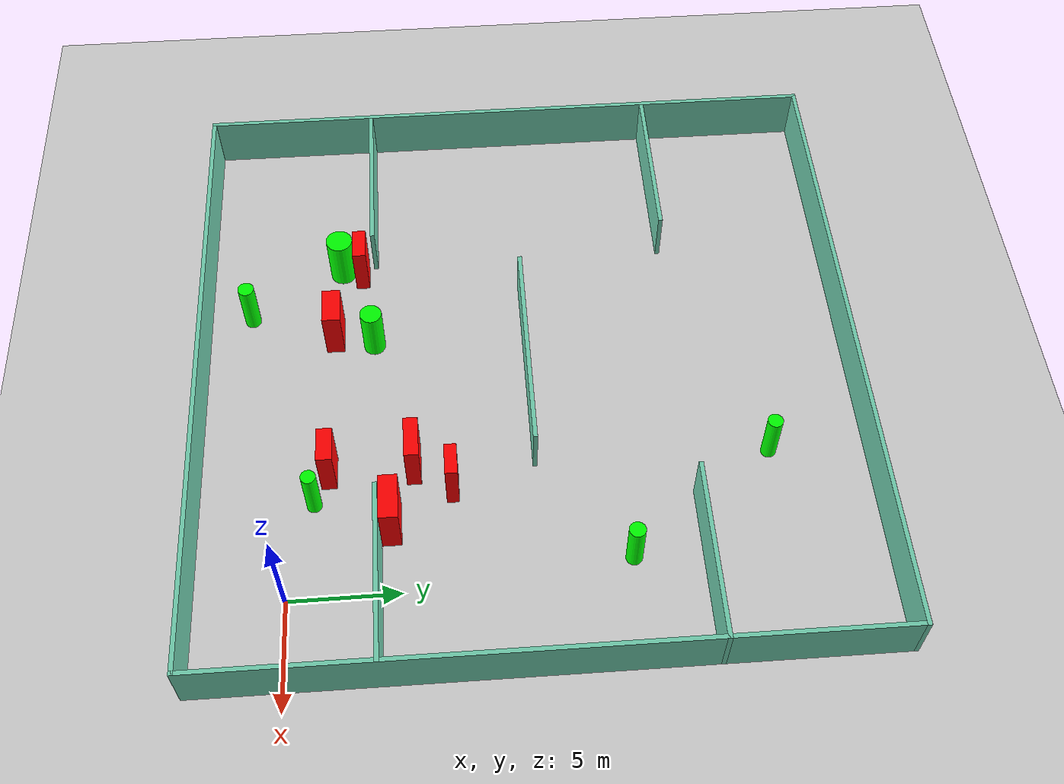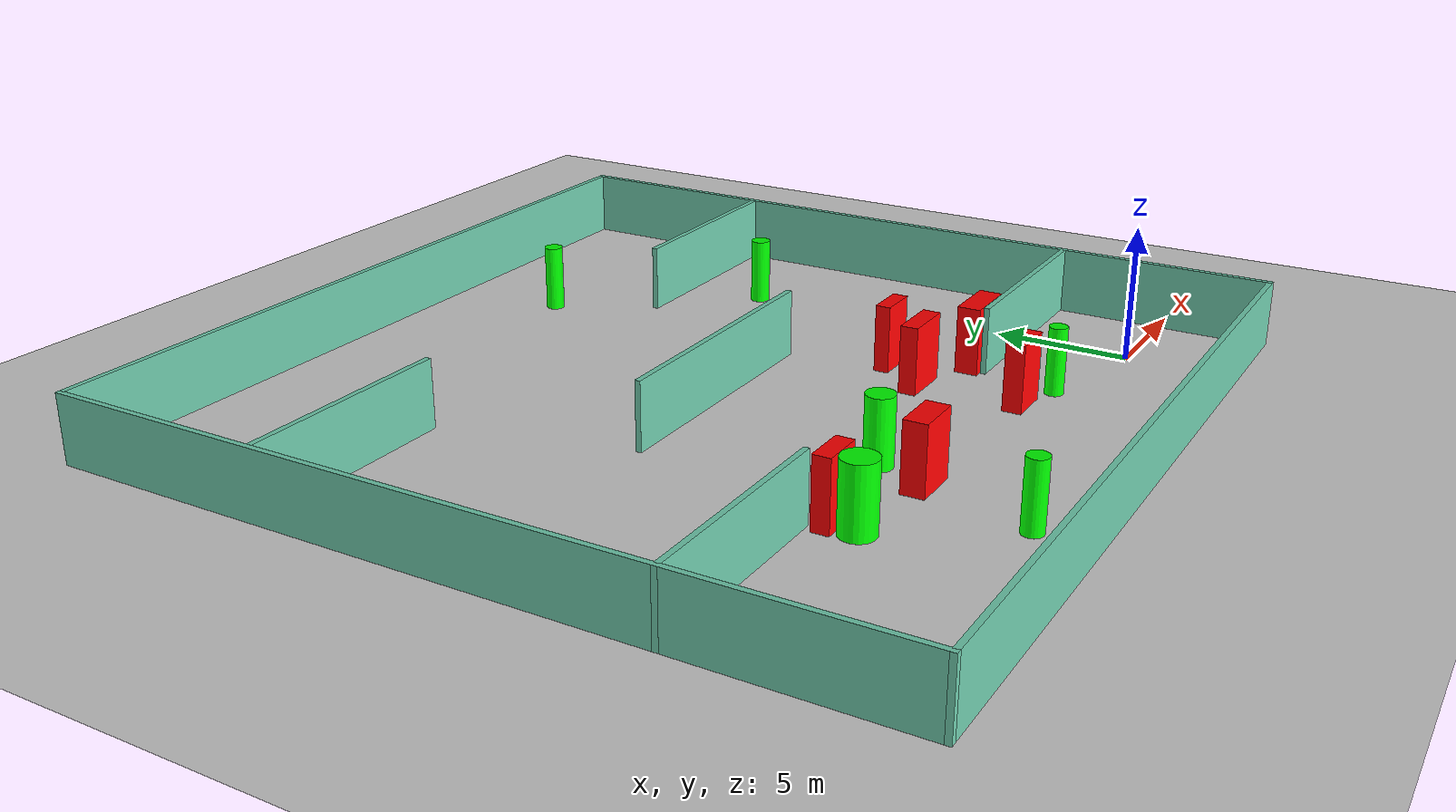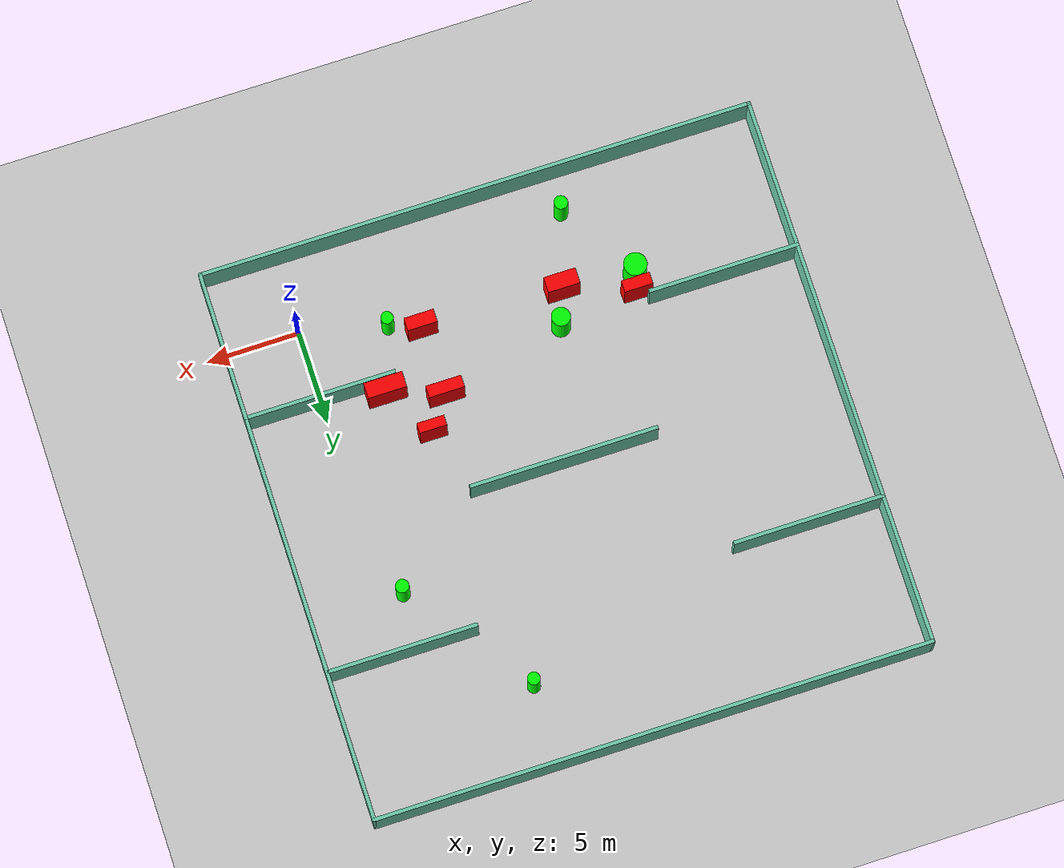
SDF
<sdf version="1.7">
 <world name="default">
  <light name="sun" type="directional">
   <pose>0 0 10 0 -0 0</pose>
   <diffuse>0.8 0.8 0.8 1</diffuse>
   <specular>0.2 0.2 0.2 1</specular>
   <attenuation>
    <range>1000</range>
    <constant>0.9</constant>
    <linear>0.01</linear>
    <quadratic>0.001</quadratic>
   </attenuation>
   <direction>-0.5 0.1 -0.9</direction>
   <spot><inner_angle>0</inner_angle><outer_angle>0</outer_angle><falloff>0</falloff></spot>
  </light>
  <model name="ground_plane">
   <static>1</static>
   <link name="link">
    <collision name="collision">
     <geometry><plane><normal>0 0 1</normal><size>100 100</size></plane></geometry>
     <surface>
      <contact><collide_bitmask>65535</collide_bitmask></contact>
      <friction><ode><mu>100</mu><mu2>50</mu2></ode></friction>
     </surface>
    </collision>
    <visual name="visual">
     <cast_shadows>0</cast_shadows>
     <geometry><plane><normal>0 0 1</normal><size>100 100</size></plane></geometry>
     <material>
      <script><uri>file://media/materials/scripts/gazebo.material</uri><name>Gazebo/Grey</name></script>
     </material>
    </visual>
   </link>
  </model>
  <gravity>0 0 -9.8</gravity>
  <magnetic_field>6e-06 2.3e-05 -4.2e-05</magnetic_field>
  <atmosphere type="adiabatic"/>
  <physics type="ode">
   <max_step_size>0.001</max_step_size>
   <real_time_factor>1</real_time_factor>
   <real_time_update_rate>1000</real_time_update_rate>
  </physics>
  <scene><ambient>0.4 0.4 0.4 1</ambient><background>0.7 0.7 0.7 1</background><shadows>1</shadows></scene>
  <spherical_coordinates>
   <surface_model>EARTH_WGS84</surface_model>
   <latitude_deg>0</latitude_deg>
   <longitude_deg>0</longitude_deg>
   <elevation>0</elevation>
   <heading_deg>0</heading_deg>
  </spherical_coordinates>
  <model name="my_base_walls">
   <link name="Wall_10">
    <collision name="Wall_10_Collision">
     <geometry><box><size>8.2 0.2 2.5</size></box></geometry>
     <pose>0 0 1.25 0 -0 0</pose>
    </collision>
    <visual name="Wall_10_Visual">
     <pose>0 0 1.25 0 -0 0</pose>
     <geometry><box><size>8.2 0.2 2.5</size></box></geometry>
     <material>
      <script><uri>file://media/materials/scripts/gazebo.material</uri><name>Gazebo/Grey</name></script>
      <ambient>0.435294 0.796078 0.67451 1</ambient>
     </material>
     <meta><layer>0</layer></meta>
    </visual>
    <pose>-11 -7 0 0 -0 0</pose>
   </link>
   <link name="Wall_12">
    <collision name="Wall_12_Collision">
     <geometry><box><size>8.2 0.2 2.5</size></box></geometry>
     <pose>0 0 1.25 0 -0 0</pose>
    </collision>
    <visual name="Wall_12_Visual">
     <pose>0 0 1.25 0 -0 0</pose>
     <geometry><box><size>8.2 0.2 2.5</size></box></geometry>
     <material>
      <script><uri>file://media/materials/scripts/gazebo.material</uri><name>Gazebo/Grey</name></script>
      <ambient>0.435294 0.796078 0.67451 1</ambient>
     </material>
     <meta><layer>0</layer></meta>
    </visual>
    <pose>-11 7 0 0 -0 0</pose>
   </link>
   <link name="Wall_14">
    <collision name="Wall_14_Collision">
     <geometry><box><size>8.2 0.2 2.5</size></box></geometry>
     <pose>0 0 1.25 0 -0 0</pose>
    </collision>
    <visual name="Wall_14_Visual">
     <pose>0 0 1.25 0 -0 0</pose>
     <geometry><box><size>8.2 0.2 2.5</size></box></geometry>
     <material>
      <script><uri>file://media/materials/scripts/gazebo.material</uri><name>Gazebo/Grey</name></script>
      <ambient>0.435294 0.796078 0.67451 1</ambient>
     </material>
     <meta><layer>0</layer></meta>
    </visual>
    <pose>11 7 0 0 -0 3.14159</pose>
   </link>
   <link name="Wall_16">
    <collision name="Wall_16_Collision">
     <geometry><box><size>10.2 0.2 2.5</size></box></geometry>
     <pose>0 0 1.25 0 -0 0</pose>
    </collision>
    <visual name="Wall_16_Visual">
     <pose>0 0 1.25 0 -0 0</pose>
     <geometry><box><size>10.2 0.2 2.5</size></box></geometry>
     <material>
      <script><uri>file://media/materials/scripts/gazebo.material</uri><name>Gazebo/Grey</name></script>
      <ambient>0.435294 0.796078 0.67451 1</ambient>
     </material>
     <meta><layer>0</layer></meta>
    </visual>
    <pose>0 0 0 0 -0 3.14159</pose>
   </link>
   <link name="Wall_2">
    <collision name="Wall_2_Collision">
     <geometry><box><size>30.2 0.2 2.5</size></box></geometry>
     <pose>0 0 1.25 0 -0 0</pose>
    </collision>
    <visual name="Wall_2_Visual">
     <pose>0 0 1.25 0 -0 0</pose>
     <geometry><box><size>30.2 0.2 2.5</size></box></geometry>
     <material>
      <script><uri>file://media/materials/scripts/gazebo.material</uri><name>Gazebo/Grey</name></script>
      <ambient>0.435294 0.796078 0.67451 1</ambient>
     </material>
     <meta><layer>0</layer></meta>
    </visual>
    <pose>0 -15 0 0 -0 3.14159</pose>
   </link>
   <link name="Wall_3">
    <collision name="Wall_3_Collision">
     <geometry><box><size>30.2 0.2 2.5</size></box></geometry>
     <pose>0 0 1.25 0 -0 0</pose>
    </collision>
    <visual name="Wall_3_Visual">
     <pose>0 0 1.25 0 -0 0</pose>
     <geometry><box><size>30.2 0.2 2.5</size></box></geometry>
     <material>
      <script><uri>file://media/materials/scripts/gazebo.material</uri><name>Gazebo/Grey</name></script>
      <ambient>0.435294 0.796078 0.67451 1</ambient>
     </material>
     <meta><layer>0</layer></meta>
    </visual>
    <pose>-15 0 0 0 -0 1.5708</pose>
   </link>
   <link name="Wall_4">
    <collision name="Wall_4_Collision">
     <geometry><box><size>30.2 0.2 2.5</size></box></geometry>
     <pose>0 0 1.25 0 -0 0</pose>
    </collision>
    <visual name="Wall_4_Visual">
     <pose>0 0 1.25 0 -0 0</pose>
     <geometry><box><size>30.2 0.2 2.5</size></box></geometry>
     <material>
      <script><uri>file://media/materials/scripts/gazebo.material</uri><name>Gazebo/Grey</name></script>
      <ambient>0.435294 0.796078 0.67451 1</ambient>
     </material>
     <meta><layer>0</layer></meta>
    </visual>
    <pose>0 15 0 0 -0 0</pose>
   </link>
   <link name="Wall_6">
    <collision name="Wall_6_Collision">
     <geometry><box><size>30.2 0.2 2.5</size></box></geometry>
     <pose>0 0 1.25 0 -0 0</pose>
    </collision>
    <visual name="Wall_6_Visual">
     <pose>0 0 1.25 0 -0 0</pose>
     <geometry><box><size>30.2 0.2 2.5</size></box></geometry>
     <material>
      <script><uri>file://media/materials/scripts/gazebo.material</uri><name>Gazebo/Grey</name></script>
      <ambient>0.435294 0.796078 0.67451 1</ambient>
     </material>
     <meta><layer>0</layer></meta>
    </visual>
    <pose>15 0 0 0 -0 1.5708</pose>
   </link>
   <link name="Wall_8">
    <collision name="Wall_8_Collision">
     <geometry><box><size>8.2 0.2 2.5</size></box></geometry>
     <pose>0 0 1.25 0 -0 0</pose>
    </collision>
    <visual name="Wall_8_Visual">
     <pose>0 0 1.25 0 -0 0</pose>
     <geometry><box><size>8.2 0.2 2.5</size></box></geometry>
     <material>
      <script><uri>file://media/materials/scripts/gazebo.material</uri><name>Gazebo/Grey</name></script>
      <ambient>0.435294 0.796078 0.67451 1</ambient>
     </material>
     <meta><layer>0</layer></meta>
    </visual>
    <pose>11 -7 0 0 -0 3.14159</pose>
   </link>
   <static>1</static>
   <pose>-11 11 0 0 -0 0</pose>
  </model>
  <model name="cylinder1">
   <static>1</static>
   <link name="link">
    <inertial>
     <mass>1</mass>
     <inertia><ixx>0.5</ixx><ixy>0</ixy><ixz>0</ixz><iyy>0.5</iyy><iyz>0</iyz><izz>1</izz></inertia>
    </inertial>
    <collision name="collision">
     <geometry><cylinder><radius>0.3431197360762901</radius><length>2.5</length></cylinder></geometry>
    </collision>
    <visual name="visual">
     <geometry><cylinder><radius>0.3431197360762901</radius><length>2.5</length></cylinder></geometry>
     <material>
      <ambient>0 1 0 1</ambient>
      <diffuse>0 1 0 1</diffuse>
      <specular>0.1 0.1 0.1 1</specular>
      <emissive>0 0 0 0</emissive>
     </material>
    </visual>
   </link>
   <pose>-5.960700668207746 21.565377178815307 1.25 0 0 0</pose>
  </model>
  <model name="cylinder2">
   <static>1</static>
   <link name="link">
    <inertial>
     <mass>1</mass>
     <inertia><ixx>0.5</ixx><ixy>0</ixy><ixz>0</ixz><iyy>0.5</iyy><iyz>0</iyz><izz>1</izz></inertia>
    </inertial>
    <collision name="collision">
     <geometry><cylinder><radius>0.5086320321332096</radius><length>2.5</length></cylinder></geometry>
    </collision>
    <visual name="visual">
     <geometry><cylinder><radius>0.5086320321332096</radius><length>2.5</length></cylinder></geometry>
     <material>
      <ambient>0 1 0 1</ambient>
      <diffuse>0 1 0 1</diffuse>
      <specular>0.1 0.1 0.1 1</specular>
      <emissive>0 0 0 0</emissive>
     </material>
    </visual>
   </link>
   <pose>-13.136265795311138 3.893583177669254 1.25 0 0 0</pose>
  </model>
  <model name="cylinder3">
   <static>1</static>
   <link name="link">
    <inertial>
     <mass>1</mass>
     <inertia><ixx>0.5</ixx><ixy>0</ixy><ixz>0</ixz><iyy>0.5</iyy><iyz>0</iyz><izz>1</izz></inertia>
    </inertial>
    <collision name="collision">
     <geometry><cylinder><radius>0.6224416715374476</radius><length>2.5</length></cylinder></geometry>
    </collision>
    <visual name="visual">
     <geometry><cylinder><radius>0.6224416715374476</radius><length>2.5</length></cylinder></geometry>
     <material>
      <ambient>0 1 0 1</ambient>
      <diffuse>0 1 0 1</diffuse>
      <specular>0.1 0.1 0.1 1</specular>
      <emissive>0 0 0 0</emissive>
     </material>
    </visual>
   </link>
   <pose>-17.681042197608875 2.4096200135284382 1.25 0 0 0</pose>
  </model>
  <model name="cylinder4">
   <static>1</static>
   <link name="link">
    <inertial>
     <mass>1</mass>
     <inertia><ixx>0.5</ixx><ixy>0</ixy><ixz>0</ixz><iyy>0.5</iyy><iyz>0</iyz><izz>1</izz></inertia>
    </inertial>
    <collision name="collision">
     <geometry><cylinder><radius>0.335412109234289</radius><length>2.5</length></cylinder></geometry>
    </collision>
    <visual name="visual">
     <geometry><cylinder><radius>0.335412109234289</radius><length>2.5</length></cylinder></geometry>
     <material>
      <ambient>0 1 0 1</ambient>
      <diffuse>0 1 0 1</diffuse>
      <specular>0.1 0.1 0.1 1</specular>
      <emissive>0 0 0 0</emissive>
     </material>
    </visual>
   </link>
   <pose>-4.543708028265481 1.1678530761895445 1.25 0 0 0</pose>
  </model>
  <model name="cylinder5">
   <static>1</static>
   <link name="link">
    <inertial>
     <mass>1</mass>
     <inertia><ixx>0.5</ixx><ixy>0</ixy><ixz>0</ixz><iyy>0.5</iyy><iyz>0</iyz><izz>1</izz></inertia>
    </inertial>
    <collision name="collision">
     <geometry><cylinder><radius>0.37363970130698326</radius><length>2.5</length></cylinder></geometry>
    </collision>
    <visual name="visual">
     <geometry><cylinder><radius>0.37363970130698326</radius><length>2.5</length></cylinder></geometry>
     <material>
      <ambient>0 1 0 1</ambient>
      <diffuse>0 1 0 1</diffuse>
      <specular>0.1 0.1 0.1 1</specular>
      <emissive>0 0 0 0</emissive>
     </material>
    </visual>
   </link>
   <pose>-15.01551558132742 -1.9328159107277374 1.25 0 0 0</pose>
  </model>
  <model name="cylinder6">
   <static>1</static>
   <link name="link">
    <inertial>
     <mass>1</mass>
     <inertia><ixx>0.5</ixx><ixy>0</ixy><ixz>0</ixz><iyy>0.5</iyy><iyz>0</iyz><izz>1</izz></inertia>
    </inertial>
    <collision name="collision">
     <geometry><cylinder><radius>0.3654018882485266</radius><length>2.5</length></cylinder></geometry>
    </collision>
    <visual name="visual">
     <geometry><cylinder><radius>0.3654018882485266</radius><length>2.5</length></cylinder></geometry>
     <material>
      <ambient>0 1 0 1</ambient>
      <diffuse>0 1 0 1</diffuse>
      <specular>0.1 0.1 0.1 1</specular>
      <emissive>0 0 0 0</emissive>
     </material>
    </visual>
   </link>
   <pose>-1.0136463835523521 14.904502167081251 1.25 0 0 0</pose>
  </model>
  <model name="box1">
   <static>1</static>
   <link name="link">
    <inertial>
     <mass>1</mass>
     <inertia><ixx>0.083</ixx><ixy>0</ixy><ixz>0</ixz><iyy>0.083</iyy><iyz>0</iyz><izz>0.083</izz></inertia>
    </inertial>
    <collision name="collision">
     <geometry><box><size>2.0920727938447623 0.847281898733061 2.5</size></box></geometry>
    </collision>
    <visual name="visual">
     <geometry><box><size>2.0920727938447623 0.847281898733061 2.5</size></box></geometry>
     <material>
      <ambient>1 0 0 1</ambient>
      <diffuse>1 0 0 1</diffuse>
      <specular>0.1 0.1 0.1 1</specular>
      <emissive>0 0 0 0</emissive>
     </material>
    </visual>
    <sensor name="my_contact" type="contact">
     <contact><collision>box_collision</collision><topic>__default_topic__</topic></contact>
    </sensor>
   </link>
   <pose>-3.3725694184429713 4.544173267177235 1.25 0 0 0</pose>
  </model>
  <model name="box2">
   <static>1</static>
   <link name="link">
    <inertial>
     <mass>1</mass>
     <inertia><ixx>0.083</ixx><ixy>0</ixy><ixz>0</ixz><iyy>0.083</iyy><iyz>0</iyz><izz>0.083</izz></inertia>
    </inertial>
    <collision name="collision">
     <geometry><box><size>1.9297852106990554 0.6439803396698638 2.5</size></box></geometry>
    </collision>
    <visual name="visual">
     <geometry><box><size>1.9297852106990554 0.6439803396698638 2.5</size></box></geometry>
     <material>
      <ambient>1 0 0 1</ambient>
      <diffuse>1 0 0 1</diffuse>
      <specular>0.1 0.1 0.1 1</specular>
      <emissive>0 0 0 0</emissive>
     </material>
    </visual>
    <sensor name="my_contact" type="contact">
     <contact><collision>box_collision</collision><topic>__default_topic__</topic></contact>
    </sensor>
   </link>
   <pose>-6.298301144053244 5.578997147326334 1.25 0 0 0</pose>
  </model>
  <model name="box3">
   <static>1</static>
   <link name="link">
    <inertial>
     <mass>1</mass>
     <inertia><ixx>0.083</ixx><ixy>0</ixy><ixz>0</ixz><iyy>0.083</iyy><iyz>0</iyz><izz>0.083</izz></inertia>
    </inertial>
    <collision name="collision">
     <geometry><box><size>1.5490259916549804 0.6334018254440097 2.5</size></box></geometry>
    </collision>
    <visual name="visual">
     <geometry><box><size>1.5490259916549804 0.6334018254440097 2.5</size></box></geometry>
     <material>
      <ambient>1 0 0 1</ambient>
      <diffuse>1 0 0 1</diffuse>
      <specular>0.1 0.1 0.1 1</specular>
      <emissive>0 0 0 0</emissive>
     </material>
    </visual>
    <sensor name="my_contact" type="contact">
     <contact><collision>box_collision</collision><topic>__default_topic__</topic></contact>
    </sensor>
   </link>
   <pose>-17.466610428462364 3.357483363720643 1.25 0 0 0</pose>
  </model>
  <model name="box4">
   <static>1</static>
   <link name="link">
    <inertial>
     <mass>1</mass>
     <inertia><ixx>0.083</ixx><ixy>0</ixy><ixz>0</ixz><iyy>0.083</iyy><iyz>0</iyz><izz>0.083</izz></inertia>
    </inertial>
    <collision name="collision">
     <geometry><box><size>1.7416882571881513 0.8454081072597879 2.5</size></box></geometry>
    </collision>
    <visual name="visual">
     <geometry><box><size>1.7416882571881513 0.8454081072597879 2.5</size></box></geometry>
     <material>
      <ambient>1 0 0 1</ambient>
      <diffuse>1 0 0 1</diffuse>
      <specular>0.1 0.1 0.1 1</specular>
      <emissive>0 0 0 0</emissive>
     </material>
    </visual>
    <sensor name="my_contact" type="contact">
     <contact><collision>box_collision</collision><topic>__default_topic__</topic></contact>
    </sensor>
   </link>
   <pose>-13.780278575239723 2.0529414872289466 1.25 0 0 0</pose>
  </model>
  <model name="box5">
   <static>1</static>
   <link name="link">
    <inertial>
     <mass>1</mass>
     <inertia><ixx>0.083</ixx><ixy>0</ixy><ixz>0</ixz><iyy>0.083</iyy><iyz>0</iyz><izz>0.083</izz></inertia>
    </inertial>
    <collision name="collision">
     <geometry><box><size>1.6091972115754671 0.6990926338208704 2.5</size></box></geometry>
    </collision>
    <visual name="visual">
     <geometry><box><size>1.6091972115754671 0.6990926338208704 2.5</size></box></geometry>
     <material>
      <ambient>1 0 0 1</ambient>
      <diffuse>1 0 0 1</diffuse>
      <specular>0.1 0.1 0.1 1</specular>
      <emissive>0 0 0 0</emissive>
     </material>
    </visual>
    <sensor name="my_contact" type="contact">
     <contact><collision>box_collision</collision><topic>__default_topic__</topic></contact>
    </sensor>
   </link>
   <pose>-6.161179929709844 1.8168088045700088 1.25 0 0 0</pose>
  </model>
  <model name="box6">
   <static>1</static>
   <link name="link">
    <inertial>
     <mass>1</mass>
     <inertia><ixx>0.083</ixx><ixy>0</ixy><ixz>0</ixz><iyy>0.083</iyy><iyz>0</iyz><izz>0.083</izz></inertia>
    </inertial>
    <collision name="collision">
     <geometry><box><size>1.4814126790083435 0.5508756478315615 2.5</size></box></geometry>
    </collision>
    <visual name="visual">
     <geometry><box><size>1.4814126790083435 0.5508756478315615 2.5</size></box></geometry>
     <material>
      <ambient>1 0 0 1</ambient>
      <diffuse>1 0 0 1</diffuse>
      <specular>0.1 0.1 0.1 1</specular>
      <emissive>0 0 0 0</emissive>
     </material>
    </visual>
    <sensor name="my_contact" type="contact">
     <contact><collision>box_collision</collision><topic>__default_topic__</topic></contact>
    </sensor>
   </link>
   <pose>-5.0386262095970515 7.267109471090013 1.25 0 0 0</pose>
  </model>
 </world>
</sdf>
